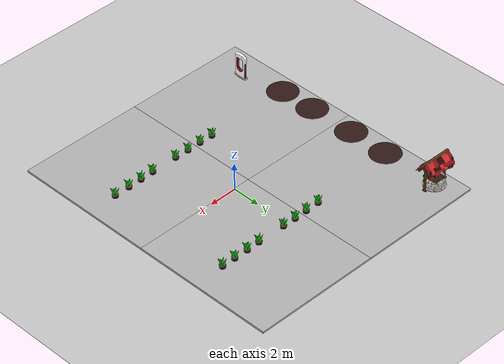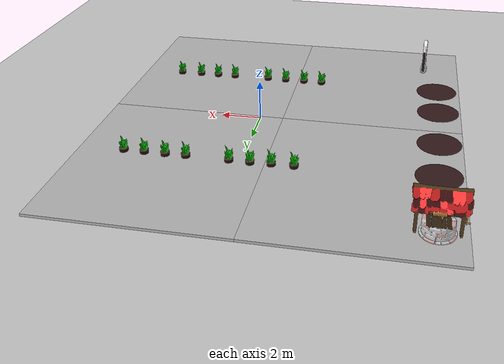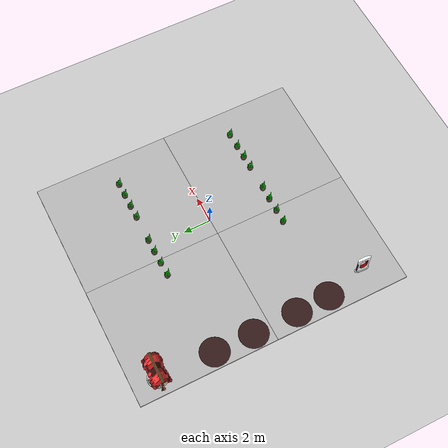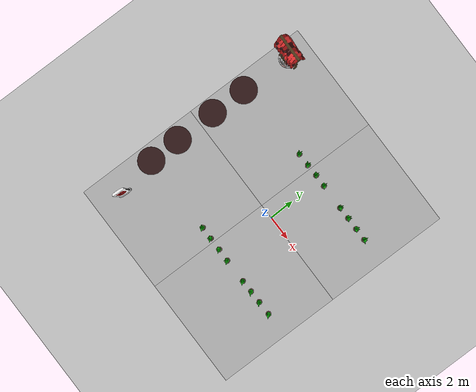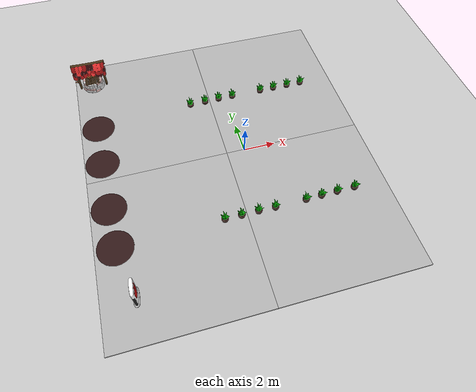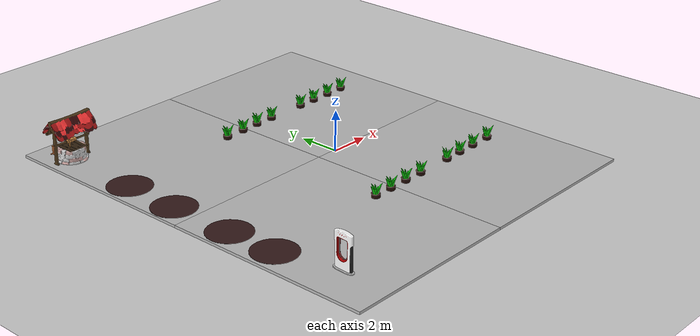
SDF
<sdf version="1.7">
 <world name="default">
  <model name="ground_plane">
   <static>1</static>
   <link name="link">
    <collision name="collision">
     <geometry><plane><normal>0 0 1</normal><size>100 100</size></plane></geometry>
     <surface><friction><ode><mu>100</mu><mu2>50</mu2></ode></friction></surface>
    </collision>
    <visual name="visual">
     <cast_shadows>0</cast_shadows>
     <geometry><plane><normal>0 0 1</normal><size>100 100</size></plane></geometry>
     <material>
      <script><uri>file://media/materials/scripts/gazebo.material</uri><name>Gazebo/Grey</name></script>
     </material>
    </visual>
   </link>
  </model>
  <light name="sun" type="directional">
   <pose>0 0 10 0 -0 0</pose>
   <diffuse>0.8 0.8 0.8 1</diffuse>
   <specular>0.2 0.2 0.2 1</specular>
   <attenuation>
    <range>1000</range>
    <constant>0.9</constant>
    <linear>0.01</linear>
    <quadratic>0.001</quadratic>
   </attenuation>
   <direction>-0.5 0.1 -0.9</direction>
   <spot><inner_angle>0</inner_angle><outer_angle>0</outer_angle><falloff>0</falloff></spot>
  </light>
  <gravity>0 0 -9.8</gravity>
  <magnetic_field>6e-06 2.3e-05 -4.2e-05</magnetic_field>
  <atmosphere type="adiabatic"/>
  <physics type="ode">
   <max_step_size>0.001</max_step_size>
   <real_time_factor>1</real_time_factor>
   <real_time_update_rate>1000</real_time_update_rate>
  </physics>
  <scene><ambient>0.4 0.4 0.4 1</ambient><background>0.7 0.7 0.7 1</background><shadows>1</shadows></scene>
  <audio><device>default</device></audio>
  <spherical_coordinates>
   <surface_model>EARTH_WGS84</surface_model>
   <latitude_deg>0</latitude_deg>
   <longitude_deg>0</longitude_deg>
   <elevation>0</elevation>
   <heading_deg>0</heading_deg>
  </spherical_coordinates>
  <model name="plant_1A">
   <pose>-2.47891 -4.48942 0 0 -0 0</pose>
   <static>1</static>
   <link name="link">
    <visual name="visual">
     <geometry>
      <mesh>
       <uri>file:///home/violas/ros2_ws/src/plugins/models/plants/PotPlant.dae</uri>
       <scale>0.2 0.2 0.2</scale>
      </mesh>
     </geometry>
    </visual>
    <collision name="collision">
     <geometry>
      <mesh>
       <uri>file:///home/violas/ros2_ws/src/plugins/models/plants/PotPlant.dae</uri>
       <scale>0.2 0.2 0.2</scale>
      </mesh>
     </geometry>
    </collision>
   </link>
  </model>
  <model name="plant_2A">
   <pose>2.4692 -4.50507 0 0 -0 0</pose>
   <static>1</static>
   <link name="link">
    <visual name="visual">
     <geometry>
      <mesh>
       <uri>file:///home/violas/ros2_ws/src/plugins/models/plants/PotPlant.dae</uri>
       <scale>0.2 0.2 0.2</scale>
      </mesh>
     </geometry>
    </visual>
    <collision name="collision">
     <geometry>
      <mesh>
       <uri>file:///home/violas/ros2_ws/src/plugins/models/plants/PotPlant.dae</uri>
       <scale>0.2 0.2 0.2</scale>
      </mesh>
     </geometry>
    </collision>
   </link>
  </model>
  <model name="plant_3A">
   <pose>-2.49744 4.50427 0 0 -0 0</pose>
   <static>1</static>
   <link name="link">
    <visual name="visual">
     <geometry>
      <mesh>
       <uri>file:///home/violas/ros2_ws/src/plugins/models/plants/PotPlant.dae</uri>
       <scale>0.2 0.2 0.2</scale>
      </mesh>
     </geometry>
    </visual>
    <collision name="collision">
     <geometry>
      <mesh>
       <uri>file:///home/violas/ros2_ws/src/plugins/models/plants/PotPlant.dae</uri>
       <scale>0.2 0.2 0.2</scale>
      </mesh>
     </geometry>
    </collision>
   </link>
  </model>
  <model name="plant_4A">
   <pose>2.49395 4.51856 0 0 -0 0</pose>
   <static>1</static>
   <link name="link">
    <visual name="visual">
     <geometry>
      <mesh>
       <uri>file:///home/violas/ros2_ws/src/plugins/models/plants/PotPlant.dae</uri>
       <scale>0.2 0.2 0.2</scale>
      </mesh>
     </geometry>
    </visual>
    <collision name="collision">
     <geometry>
      <mesh>
       <uri>file:///home/violas/ros2_ws/src/plugins/models/plants/PotPlant.dae</uri>
       <scale>0.2 0.2 0.2</scale>
      </mesh>
     </geometry>
    </collision>
   </link>
  </model>
  <model name="plant_1B">
   <pose>-1.48767 -4.49905 0 0 -0 0</pose>
   <static>1</static>
   <link name="link">
    <visual name="visual">
     <geometry>
      <mesh>
       <uri>file:///home/violas/ros2_ws/src/plugins/models/plants/PotPlant.dae</uri>
       <scale>0.2 0.2 0.2</scale>
      </mesh>
     </geometry>
    </visual>
    <collision name="collision">
     <geometry>
      <mesh>
       <uri>file:///home/violas/ros2_ws/src/plugins/models/plants/PotPlant.dae</uri>
       <scale>0.2 0.2 0.2</scale>
      </mesh>
     </geometry>
    </collision>
   </link>
  </model>
  <model name="plant_2B">
   <pose>3.44938 -4.48356 0 0 -0 0</pose>
   <static>1</static>
   <link name="link">
    <visual name="visual">
     <geometry>
      <mesh>
       <uri>file:///home/violas/ros2_ws/src/plugins/models/plants/PotPlant.dae</uri>
       <scale>0.2 0.2 0.2</scale>
      </mesh>
     </geometry>
    </visual>
    <collision name="collision">
     <geometry>
      <mesh>
       <uri>file:///home/violas/ros2_ws/src/plugins/models/plants/PotPlant.dae</uri>
       <scale>0.2 0.2 0.2</scale>
      </mesh>
     </geometry>
    </collision>
   </link>
  </model>
  <model name="plant_3B">
   <pose>-1.46997 4.51417 0 0 -0 0</pose>
   <static>1</static>
   <link name="link">
    <visual name="visual">
     <geometry>
      <mesh>
       <uri>file:///home/violas/ros2_ws/src/plugins/models/plants/PotPlant.dae</uri>
       <scale>0.2 0.2 0.2</scale>
      </mesh>
     </geometry>
    </visual>
    <collision name="collision">
     <geometry>
      <mesh>
       <uri>file:///home/violas/ros2_ws/src/plugins/models/plants/PotPlant.dae</uri>
       <scale>0.2 0.2 0.2</scale>
      </mesh>
     </geometry>
    </collision>
   </link>
  </model>
  <model name="plant_4B">
   <pose>3.46537 4.53222 0 0 -0 0</pose>
   <static>1</static>
   <link name="link">
    <visual name="visual">
     <geometry>
      <mesh>
       <uri>file:///home/violas/ros2_ws/src/plugins/models/plants/PotPlant.dae</uri>
       <scale>0.2 0.2 0.2</scale>
      </mesh>
     </geometry>
    </visual>
    <collision name="collision">
     <geometry>
      <mesh>
       <uri>file:///home/violas/ros2_ws/src/plugins/models/plants/PotPlant.dae</uri>
       <scale>0.2 0.2 0.2</scale>
      </mesh>
     </geometry>
    </collision>
   </link>
  </model>
  <model name="plant_1C">
   <pose>-0.455808 -4.49036 0 0 -0 0</pose>
   <static>1</static>
   <link name="link">
    <visual name="visual">
     <geometry>
      <mesh>
       <uri>file:///home/violas/ros2_ws/src/plugins/models/plants/PotPlant.dae</uri>
       <scale>0.2 0.2 0.2</scale>
      </mesh>
     </geometry>
    </visual>
    <collision name="collision">
     <geometry>
      <mesh>
       <uri>file:///home/violas/ros2_ws/src/plugins/models/plants/PotPlant.dae</uri>
       <scale>0.2 0.2 0.2</scale>
      </mesh>
     </geometry>
    </collision>
   </link>
  </model>
  <model name="plant_2C">
   <pose>4.44832 -4.47234 0 0 -0 0</pose>
   <static>1</static>
   <link name="link">
    <visual name="visual">
     <geometry>
      <mesh>
       <uri>file:///home/violas/ros2_ws/src/plugins/models/plants/PotPlant.dae</uri>
       <scale>0.2 0.2 0.2</scale>
      </mesh>
     </geometry>
    </visual>
    <collision name="collision">
     <geometry>
      <mesh>
       <uri>file:///home/violas/ros2_ws/src/plugins/models/plants/PotPlant.dae</uri>
       <scale>0.2 0.2 0.2</scale>
      </mesh>
     </geometry>
    </collision>
   </link>
  </model>
  <model name="plant_3C">
   <pose>-0.506351 4.54678 0 0 -0 0</pose>
   <static>1</static>
   <link name="link">
    <visual name="visual">
     <geometry>
      <mesh>
       <uri>file:///home/violas/ros2_ws/src/plugins/models/plants/PotPlant.dae</uri>
       <scale>0.2 0.2 0.2</scale>
      </mesh>
     </geometry>
    </visual>
    <collision name="collision">
     <geometry>
      <mesh>
       <uri>file:///home/violas/ros2_ws/src/plugins/models/plants/PotPlant.dae</uri>
       <scale>0.2 0.2 0.2</scale>
      </mesh>
     </geometry>
    </collision>
   </link>
  </model>
  <model name="plant_4C">
   <pose>4.47042 4.52315 0 0 -0 0</pose>
   <static>1</static>
   <link name="link">
    <visual name="visual">
     <geometry>
      <mesh>
       <uri>file:///home/violas/ros2_ws/src/plugins/models/plants/PotPlant.dae</uri>
       <scale>0.2 0.2 0.2</scale>
      </mesh>
     </geometry>
    </visual>
    <collision name="collision">
     <geometry>
      <mesh>
       <uri>file:///home/violas/ros2_ws/src/plugins/models/plants/PotPlant.dae</uri>
       <scale>0.2 0.2 0.2</scale>
      </mesh>
     </geometry>
    </collision>
   </link>
  </model>
  <model name="plant_1D">
   <pose>0.560412 -4.51206 0 0 -0 0</pose>
   <static>1</static>
   <link name="link">
    <visual name="visual">
     <geometry>
      <mesh>
       <uri>file:///home/violas/ros2_ws/src/plugins/models/plants/PotPlant.dae</uri>
       <scale>0.2 0.2 0.2</scale>
      </mesh>
     </geometry>
    </visual>
    <collision name="collision">
     <geometry>
      <mesh>
       <uri>file:///home/violas/ros2_ws/src/plugins/models/plants/PotPlant.dae</uri>
       <scale>0.2 0.2 0.2</scale>
      </mesh>
     </geometry>
    </collision>
   </link>
  </model>
  <model name="plant_2D">
   <pose>5.56973 -4.4632 0 0 -0 0</pose>
   <static>1</static>
   <link name="link">
    <visual name="visual">
     <geometry>
      <mesh>
       <uri>file:///home/violas/ros2_ws/src/plugins/models/plants/PotPlant.dae</uri>
       <scale>0.2 0.2 0.2</scale>
      </mesh>
     </geometry>
    </visual>
    <collision name="collision">
     <geometry>
      <mesh>
       <uri>file:///home/violas/ros2_ws/src/plugins/models/plants/PotPlant.dae</uri>
       <scale>0.2 0.2 0.2</scale>
      </mesh>
     </geometry>
    </collision>
   </link>
  </model>
  <model name="plant_3D">
   <pose>0.468508 4.53727 0 0 -0 0</pose>
   <static>1</static>
   <link name="link">
    <visual name="visual">
     <geometry>
      <mesh>
       <uri>file:///home/violas/ros2_ws/src/plugins/models/plants/PotPlant.dae</uri>
       <scale>0.2 0.2 0.2</scale>
      </mesh>
     </geometry>
    </visual>
    <collision name="collision">
     <geometry>
      <mesh>
       <uri>file:///home/violas/ros2_ws/src/plugins/models/plants/PotPlant.dae</uri>
       <scale>0.2 0.2 0.2</scale>
      </mesh>
     </geometry>
    </collision>
   </link>
  </model>
  <model name="plant_4D">
   <pose>5.46192 4.52339 0 0 -0 0</pose>
   <static>1</static>
   <link name="link">
    <visual name="visual">
     <geometry>
      <mesh>
       <uri>file:///home/violas/ros2_ws/src/plugins/models/plants/PotPlant.dae</uri>
       <scale>0.2 0.2 0.2</scale>
      </mesh>
     </geometry>
    </visual>
    <collision name="collision">
     <geometry>
      <mesh>
       <uri>file:///home/violas/ros2_ws/src/plugins/models/plants/PotPlant.dae</uri>
       <scale>0.2 0.2 0.2</scale>
      </mesh>
     </geometry>
    </collision>
   </link>
  </model>
  <model name="well">
   <static>1</static>
   <link name="link">
    <visual name="visual">
     <geometry>
      <mesh>
       <uri>file:///home/violas/ros2_ws/src/plugins/models/well/meshes/well.dae</uri>
       <scale>0.1 0.1 0.1</scale>
      </mesh>
     </geometry>
    </visual>
   </link>
   <pose>-8.71612 8.17043 0 0 -0 0</pose>
  </model>
  <model name="mud">
   <static>1</static>
   <link name="link">
    <collision name="collision"><geometry><box><size>17.6 20 0.2</size></box></geometry></collision>
    <visual name="visual_1">
     <pose>-4.4 5 0 0 -0 0</pose>
     <cast_shadows>0</cast_shadows>
     <geometry><box><size>8.8 10 0.2</size></box></geometry>
     <material>
      <script>
       <uri>model://mud_box/materials/scripts</uri>
       <uri>model://mud_box/materials/textures</uri>
       <name>vrc/mud</name>
      </script>
     </material>
    </visual>
    <visual name="visual_2">
     <pose>4.4 5 0 0 -0 0</pose>
     <cast_shadows>0</cast_shadows>
     <geometry><box><size>8.8 10 0.2</size></box></geometry>
     <material>
      <script>
       <uri>model://mud_box/materials/scripts</uri>
       <uri>model://mud_box/materials/textures</uri>
       <name>vrc/mud</name>
      </script>
     </material>
    </visual>
    <visual name="visual_3">
     <pose>4.4 -5 0 0 -0 0</pose>
     <cast_shadows>0</cast_shadows>
     <geometry><box><size>8.8 10 0.2</size></box></geometry>
     <material>
      <script>
       <uri>model://mud_box/materials/scripts</uri>
       <uri>model://mud_box/materials/textures</uri>
       <name>vrc/mud</name>
      </script>
     </material>
    </visual>
    <visual name="visual_4">
     <pose>-4.4 -5 0 0 -0 0</pose>
     <cast_shadows>0</cast_shadows>
     <geometry><box><size>8.8 10 0.2</size></box></geometry>
     <material>
      <script>
       <uri>model://mud_box/materials/scripts</uri>
       <uri>model://mud_box/materials/textures</uri>
       <name>vrc/mud</name>
      </script>
     </material>
    </visual>
   </link>
   <pose>-1.1553 -0.012377 0 0 -0 0</pose>
  </model>
  <model name="charger">
   <static>1</static>
   <link name="link">
    <visual name="visual">
     <geometry>
      <mesh>
       <uri>file:///home/violas/ros2_ws/src/plugins/models/charger2/charger.dae</uri>
       <scale>1 1 1</scale>
      </mesh>
     </geometry>
    </visual>
   </link>
   <pose>-8.2 -7 0 0 0 -1.62417</pose>
  </model>
  <model name="outroBigCilindro">
   <link name="link">
    <inertial>
     <mass>1</mass>
     <inertia><ixx>0.145833</ixx><ixy>0</ixy><ixz>0</ixz><iyy>0.145833</iyy><iyz>0</iyz><izz>0.125</izz></inertia>
    </inertial>
    <visual name="visual">
     <geometry><cylinder><radius>1.04919</radius><length>0.00712548</length></cylinder></geometry>
     <material>
      <script><name>Gazebo/Grey</name><uri>file://media/materials/scripts/gazebo.material</uri></script>
      <shader type="pixel"><normal_map>__default__</normal_map></shader>
      <ambient>0.2 0.1 0.1 1</ambient>
      <diffuse>0.2 0.1 0.1 1</diffuse>
      <specular>0.2 0.11 0.11 1</specular>
      <emissive>0.2 0.1 0.1 1</emissive>
     </material>
    </visual>
    <collision name="collision">
     <geometry><cylinder><radius>1.04919</radius><length>0.00712548</length></cylinder></geometry>
     <surface>
      <friction>
       <ode><mu>1</mu><mu2>1</mu2><fdir1>0 0 0</fdir1><slip1>0</slip1><slip2>0</slip2></ode>
       <torsional>
        <coefficient>1</coefficient>
        <patch_radius>0</patch_radius>
        <surface_radius>0</surface_radius>
        <use_patch_radius>1</use_patch_radius>
        <ode><slip>0</slip></ode>
       </torsional>
      </friction>
      <bounce><restitution_coefficient>0</restitution_coefficient><threshold>1e+06</threshold></bounce>
      <contact>
       <collide_without_contact>0</collide_without_contact>
       <collide_without_contact_bitmask>1</collide_without_contact_bitmask>
       <collide_bitmask>1</collide_bitmask>
       <ode>
        <soft_cfm>0</soft_cfm>
        <soft_erp>0.2</soft_erp>
        <kp>1e+13</kp>
        <kd>1</kd>
        <max_vel>0.01</max_vel>
        <min_depth>0</min_depth>
       </ode>
       <bullet>
        <split_impulse>1</split_impulse>
        <split_impulse_penetration_threshold>-0.01</split_impulse_penetration_threshold>
        <soft_cfm>0</soft_cfm>
        <soft_erp>0.2</soft_erp>
        <kp>1e+13</kp>
        <kd>1</kd>
       </bullet>
      </contact>
     </surface>
    </collision>
   </link>
   <static>1</static>
   <pose>-8.81754 4.10258 0.103563 -1.3e-05 3e-06 -0.475767</pose>
  </model>
  <light name="sun_clone" type="directional">
   <pose>13.3913 1.36485 5 0 -0 0</pose>
   <diffuse>0.8 0.8 0.8 1</diffuse>
   <specular>0.2 0.2 0.2 1</specular>
   <direction>-0.483368 0.096674 -0.870063</direction>
   <attenuation>
    <range>1000</range>
    <constant>0.9</constant>
    <linear>0.01</linear>
    <quadratic>0.001</quadratic>
   </attenuation>
   <spot><inner_angle>0</inner_angle><outer_angle>0</outer_angle><falloff>0</falloff></spot>
  </light>
  <model name="outroBigCilindro_clone">
   <link name="link">
    <inertial>
     <mass>1</mass>
     <inertia><ixx>0.145833</ixx><ixy>0</ixy><ixz>0</ixz><iyy>0.145833</iyy><iyz>0</iyz><izz>0.125</izz></inertia>
    </inertial>
    <visual name="visual">
     <geometry><cylinder><radius>1.04919</radius><length>0.00712547</length></cylinder></geometry>
     <material>
      <script><name>Gazebo/Grey</name><uri>file://media/materials/scripts/gazebo.material</uri></script>
      <shader type="pixel"><normal_map>__default__</normal_map></shader>
      <ambient>0.2 0.1 0.1 1</ambient>
      <diffuse>0.2 0.1 0.1 1</diffuse>
      <specular>0.2 0.11 0.11 1</specular>
      <emissive>0.2 0.1 0.1 1</emissive>
     </material>
    </visual>
    <collision name="collision">
     <geometry><cylinder><radius>1.04919</radius><length>0.00712547</length></cylinder></geometry>
     <surface>
      <friction>
       <ode><mu>1</mu><mu2>1</mu2><fdir1>0 0 0</fdir1><slip1>0</slip1><slip2>0</slip2></ode>
       <torsional>
        <coefficient>1</coefficient>
        <patch_radius>0</patch_radius>
        <surface_radius>0</surface_radius>
        <use_patch_radius>1</use_patch_radius>
        <ode><slip>0</slip></ode>
       </torsional>
      </friction>
      <bounce><restitution_coefficient>0</restitution_coefficient><threshold>1e+06</threshold></bounce>
      <contact>
       <collide_without_contact>0</collide_without_contact>
       <collide_without_contact_bitmask>1</collide_without_contact_bitmask>
       <collide_bitmask>1</collide_bitmask>
       <ode>
        <soft_cfm>0</soft_cfm>
        <soft_erp>0.2</soft_erp>
        <kp>1e+13</kp>
        <kd>1</kd>
        <max_vel>0.01</max_vel>
        <min_depth>0</min_depth>
       </ode>
       <bullet>
        <split_impulse>1</split_impulse>
        <split_impulse_penetration_threshold>-0.01</split_impulse_penetration_threshold>
        <soft_cfm>0</soft_cfm>
        <soft_erp>0.2</soft_erp>
        <kp>1e+13</kp>
        <kd>1</kd>
       </bullet>
      </contact>
     </surface>
    </collision>
   </link>
   <static>1</static>
   <pose>-8.82997 -2.06814 0.103545 -2.6e-05 -2.5e-05 -0.00895</pose>
  </model>
  <model name="outroBigCilindro_clone_0">
   <link name="link">
    <inertial>
     <mass>1</mass>
     <inertia><ixx>0.145833</ixx><ixy>0</ixy><ixz>0</ixz><iyy>0.145833</iyy><iyz>0</iyz><izz>0.125</izz></inertia>
    </inertial>
    <visual name="visual">
     <geometry><cylinder><radius>1.04919</radius><length>0.00712547</length></cylinder></geometry>
     <material>
      <script><name>Gazebo/Grey</name><uri>file://media/materials/scripts/gazebo.material</uri></script>
      <shader type="pixel"><normal_map>__default__</normal_map></shader>
      <ambient>0.2 0.1 0.1 1</ambient>
      <diffuse>0.2 0.1 0.1 1</diffuse>
      <specular>0.2 0.11 0.11 1</specular>
      <emissive>0.2 0.1 0.1 1</emissive>
     </material>
    </visual>
    <collision name="collision">
     <geometry><cylinder><radius>1.04919</radius><length>0.00712547</length></cylinder></geometry>
     <surface>
      <friction>
       <ode><mu>1</mu><mu2>1</mu2><fdir1>0 0 0</fdir1><slip1>0</slip1><slip2>0</slip2></ode>
       <torsional>
        <coefficient>1</coefficient>
        <patch_radius>0</patch_radius>
        <surface_radius>0</surface_radius>
        <use_patch_radius>1</use_patch_radius>
        <ode><slip>0</slip></ode>
       </torsional>
      </friction>
      <bounce><restitution_coefficient>0</restitution_coefficient><threshold>1e+06</threshold></bounce>
      <contact>
       <collide_without_contact>0</collide_without_contact>
       <collide_without_contact_bitmask>1</collide_without_contact_bitmask>
       <collide_bitmask>1</collide_bitmask>
       <ode>
        <soft_cfm>0</soft_cfm>
        <soft_erp>0.2</soft_erp>
        <kp>1e+13</kp>
        <kd>1</kd>
        <max_vel>0.01</max_vel>
        <min_depth>0</min_depth>
       </ode>
       <bullet>
        <split_impulse>1</split_impulse>
        <split_impulse_penetration_threshold>-0.01</split_impulse_penetration_threshold>
        <soft_cfm>0</soft_cfm>
        <soft_erp>0.2</soft_erp>
        <kp>1e+13</kp>
        <kd>1</kd>
       </bullet>
      </contact>
     </surface>
    </collision>
   </link>
   <static>1</static>
   <pose>-8.77095 -4.56716 0.103704 -4.4e-05 -4.6e-05 -0.071586</pose>
  </model>
  <model name="outroBigCilindro_clone_1">
   <link name="link">
    <inertial>
     <mass>1</mass>
     <inertia><ixx>0.145833</ixx><ixy>0</ixy><ixz>0</ixz><iyy>0.145833</iyy><iyz>0</iyz><izz>0.125</izz></inertia>
    </inertial>
    <visual name="visual">
     <geometry><cylinder><radius>1.04919</radius><length>0.00712547</length></cylinder></geometry>
     <material>
      <script><name>Gazebo/Grey</name><uri>file://media/materials/scripts/gazebo.material</uri></script>
      <shader type="pixel"><normal_map>__default__</normal_map></shader>
      <ambient>0.2 0.1 0.1 1</ambient>
      <diffuse>0.2 0.1 0.1 1</diffuse>
      <specular>0.2 0.11 0.11 1</specular>
      <emissive>0.2 0.1 0.1 1</emissive>
     </material>
    </visual>
    <collision name="collision">
     <geometry><cylinder><radius>1.04919</radius><length>0.00712547</length></cylinder></geometry>
     <surface>
      <friction>
       <ode><mu>1</mu><mu2>1</mu2><fdir1>0 0 0</fdir1><slip1>0</slip1><slip2>0</slip2></ode>
       <torsional>
        <coefficient>1</coefficient>
        <patch_radius>0</patch_radius>
        <surface_radius>0</surface_radius>
        <use_patch_radius>1</use_patch_radius>
        <ode><slip>0</slip></ode>
       </torsional>
      </friction>
      <bounce><restitution_coefficient>0</restitution_coefficient><threshold>1e+06</threshold></bounce>
      <contact>
       <collide_without_contact>0</collide_without_contact>
       <collide_without_contact_bitmask>1</collide_without_contact_bitmask>
       <collide_bitmask>1</collide_bitmask>
       <ode>
        <soft_cfm>0</soft_cfm>
        <soft_erp>0.2</soft_erp>
        <kp>1e+13</kp>
        <kd>1</kd>
        <max_vel>0.01</max_vel>
        <min_depth>0</min_depth>
       </ode>
       <bullet>
        <split_impulse>1</split_impulse>
        <split_impulse_penetration_threshold>-0.01</split_impulse_penetration_threshold>
        <soft_cfm>0</soft_cfm>
        <soft_erp>0.2</soft_erp>
        <kp>1e+13</kp>
        <kd>1</kd>
       </bullet>
      </contact>
     </surface>
    </collision>
   </link>
   <static>1</static>
   <pose>-8.85452 1.22276 0.103624 -1.7e-05 5.6e-05 -2.04134</pose>
  </model>
 </world>
</sdf>
